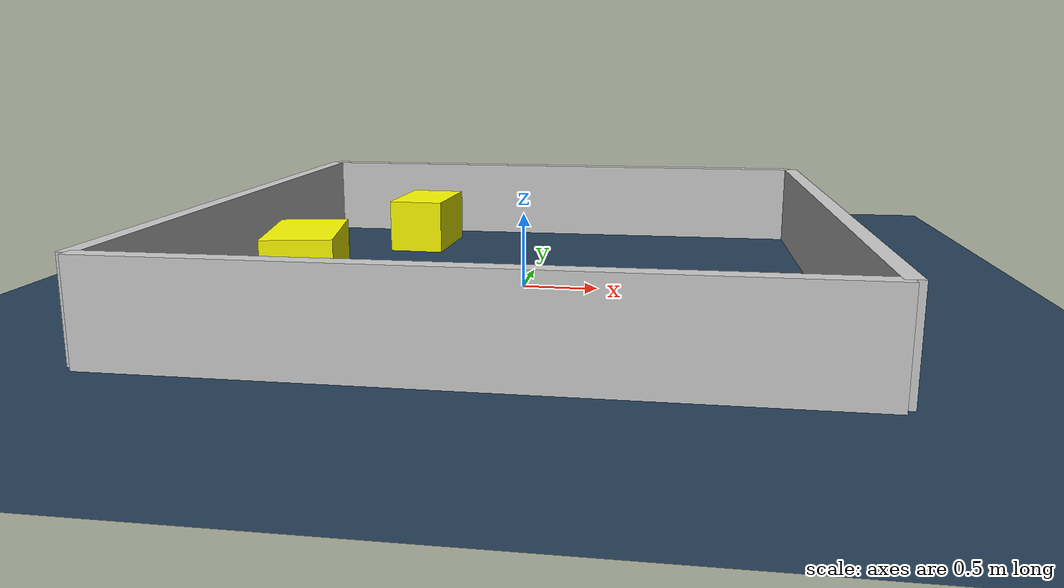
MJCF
<?xml version="1.0" ?>
<mujoco model="generated_environment">
  <option timestep="0.01" integrator="RK4" cone="elliptic"/>
  <default>
    <geom density="1"/>
  </default>
  <asset>
    <texture builtin="gradient" height="3072" rgb1="0.3 0.5 0.7" rgb2="0 0 0" type="skybox" width="512"/>
    <texture builtin="checker" height="300" mark="edge" markrgb="0.8 0.8 0.8" name="groundplane" rgb1="0.2 0.3 0.4" rgb2="0.1 0.2 0.3" type="2d" width="300"/>
    <material name="groundplane" reflectance="0.2" texrepeat="5 5" texture="groundplane" texuniform="true"/>
    <material name="robot" rgba="0.0 1.0 0.0 1"/>
  </asset>
  <worldbody>
    <light dir="0 0 -1" directional="true" pos="0 0 1.5"/>
    <geom condim="4" friction="1.0 0.005 0.001" material="groundplane" name="floor" size="0 0 0.05" type="plane"/>
    <body name="walls">
      <geom name="wall_1" condim="4" pos="-2.0 0.0 0.3" rgba="0.800000011920929 0.800000011920929 0.800000011920929 1.0" size="0.05 2.0 0.3" type="box"/>
      <geom name="wall_2" condim="4" pos="2.0 0.0 0.3" rgba="0.800000011920929 0.800000011920929 0.800000011920929 1.0" size="0.05 2.0 0.3" type="box"/>
      <geom name="wall_3" condim="4" pos="0.0 -2.0 0.3" rgba="0.800000011920929 0.800000011920929 0.800000011920929 1.0" size="2.0 0.05 0.3" type="box"/>
      <geom name="wall_4" condim="4" pos="0.0 2.0 0.3" rgba="0.800000011920929 0.800000011920929 0.800000011920929 1.0" size="2.0 0.05 0.3" type="box"/>
    </body>
    <body name="robot">
      <joint name="joint_x" type="slide" pos="0 0 0" axis="1 0 0"/>
      <joint name="joint_y" type="slide" pos="0 0 0" axis="0 1 0"/>
      <geom name="robot" type="sphere" pos="-0.07619799644810521 -1.6034242838992108 0.2" size="0.05" mass="5." friction="1.0 0.005 0.0001" condim="4"/>
      <site name="sensor_ball"/>
    </body>
    <body name="obstacle_1_movable">
      <geom name="obstacle_1_movable" condim="4" pos="-1.4618595228322142 -0.2176659252183888 0.2" euler="0 0 191.4350842617732" friction="1.0 0.005 0.001" rgba="1 1 0 1" size="0.23395326191767057 0.3875773850911328 0.2" type="box" mass="0.1"/>
      <joint type="free"/>
    </body>
    <body name="obstacle_2_movable">
      <geom name="obstacle_2_movable" condim="4" pos="-1.0135836615627198 1.3509833129702504 0.2" euler="0 0 267.26555152825796" friction="1.0 0.005 0.001" rgba="1 1 0 1" size="0.33411677664252 0.20885257984597982 0.2" type="box" mass="0.1"/>
      <joint type="free"/>
    </body>
  </worldbody>
  <actuator>
    <motor name="actuator_x" joint="joint_x" gear="1" ctrlrange="-1 1"/>
    <motor name="actuator_y" joint="joint_y" gear="1" ctrlrange="-1 1"/>
  </actuator>
</mujoco>
